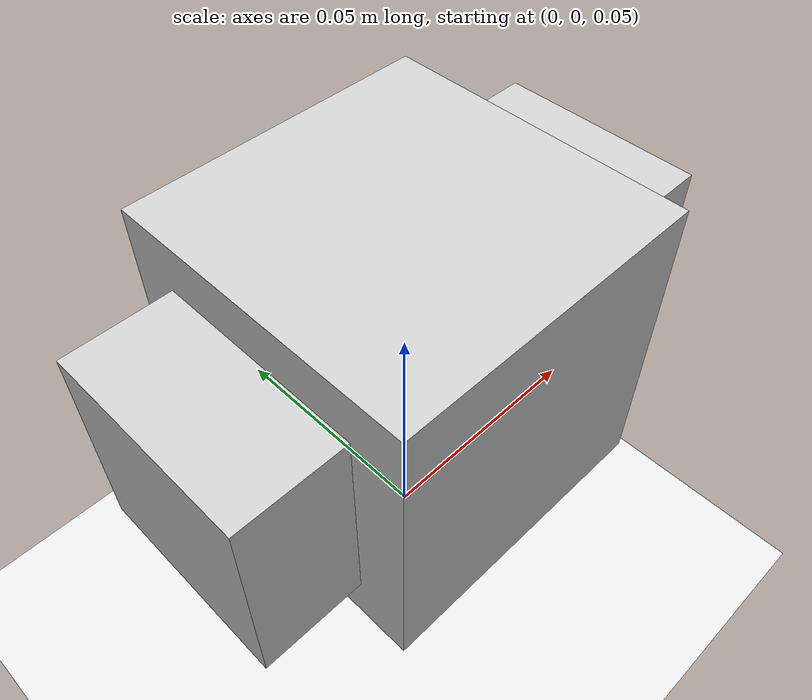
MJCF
<mujoco model="two_finger_pinch">
  <option timestep="0.002" gravity="0 0 -9.81"/>

  <default>
    <!-- Joint damping settles the pads onto the box without ringing. -->
    <joint type="slide" axis="1 0 0" damping="2" range="-0.05 0.05" limited="true"/>
    <geom rgba="0.8 0.8 0.8 1"/>
  </default>

  <worldbody>
    <geom name="floor" type="plane" size="0.25 0.25 0.05" rgba="0.9 0.9 0.9 1"/>

    <!-- Pads: 0.02 m thick (x), 0.04 m wide (y), 0.04 m tall (z), touching the box faces at x = -+0.03. -->
    <body name="left" pos="-0.04 0 0.1">
      <joint name="left"/>
      <geom name="left" type="box" size="0.01 0.02 0.02" mass="0.1" priority="1" friction="0.5 0.005 0.0001"/>
    </body>
    <body name="right" pos="0.04 0 0.1">
      <joint name="right"/>
      <geom name="right" type="box" size="0.01 0.02 0.02" mass="0.1" priority="1" friction="0.5 0.005 0.0001"/>
    </body>

    <!-- The held object: a 0.06 m cube of 0.2 kg, centred between the pads 0.1 m above the floor. -->
    <body name="box" pos="0 0 0.1">
      <freejoint name="box"/>
      <geom name="box" type="box" size="0.03 0.03 0.03" mass="0.2"/>
    </body>
  </worldbody>

  <actuator>
    <!-- Positive ctrl pushes each pad toward the box: +x for the left pad, -x for the right pad. -->
    <motor name="left" joint="left" gear="1" ctrlrange="0 20" ctrllimited="true"/>
    <motor name="right" joint="right" gear="-1" ctrlrange="0 20" ctrllimited="true"/>
  </actuator>

  <keyframe>
    <key name="hold" ctrl="5 5"/>
  </keyframe>
</mujoco>
